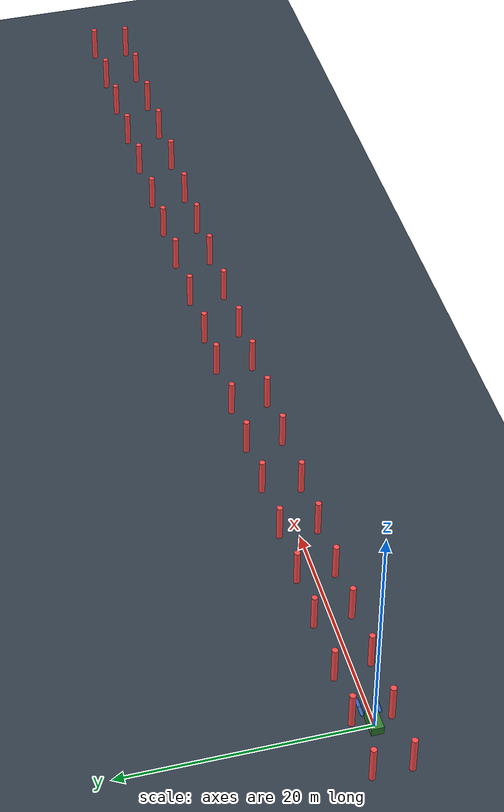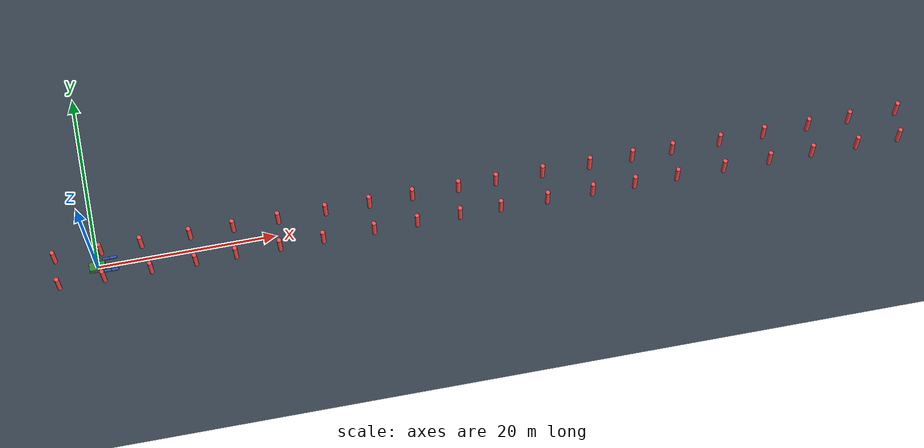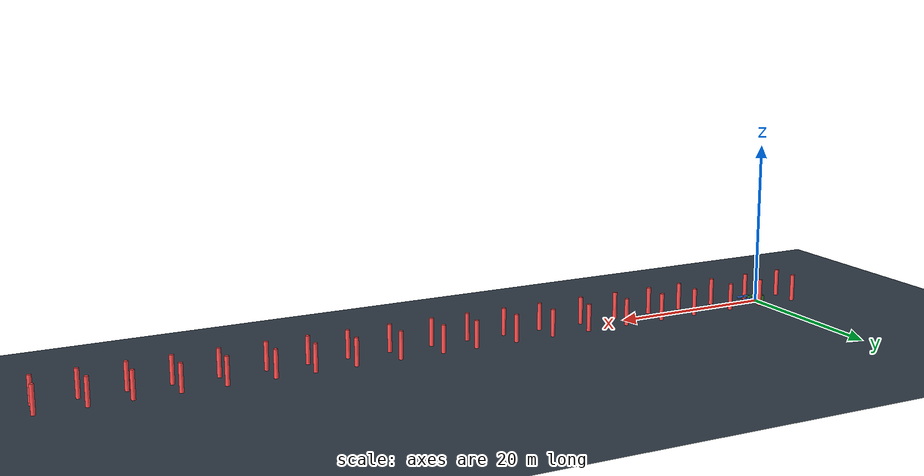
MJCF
<?xml version='1.0' encoding='utf-8'?>
<mujoco model="two_poles_solid_colors">

  <compiler angle="degree" coordinate="local" inertiafromgeom="true" autolimits="true" />
  <option timestep="0.01" integrator="RK4" gravity="0 0 -9.81" />

  <default>
    <geom friction="0 0 0" />
  </default>

  <worldbody>

    <light name="sun" pos="0 0 5" dir="0 0 -1" diffuse="1 1 1" specular="0.1 0.1 0.1" directional="true" cutoff="100" />

    <geom name="ground" type="plane" pos="0 0 0" size="100 100 0.5" rgba="0.2 0.25 0.3 1" />

    <body name="pole_0_0"><geom type="cylinder" pos="-4.46 -1.57 1.2" size="0.25 2" rgba="1 0.3 0.3 1" name="pole_0_0" /></body><body name="pole_0_1"><geom type="cylinder" pos="0.57 -1.57 1.2" size="0.25 2" rgba="1 0.3 0.3 1" name="pole_0_1" /></body><body name="pole_0_2"><geom type="cylinder" pos="5.84 -1.57 1.2" size="0.25 2" rgba="1 0.3 0.3 1" name="pole_0_2" /></body><body name="pole_0_3"><geom type="cylinder" pos="10.81 -1.57 1.2" size="0.25 2" rgba="1 0.3 0.3 1" name="pole_0_3" /></body><body name="pole_0_4"><geom type="cylinder" pos="15.31 -1.57 1.2" size="0.25 2" rgba="1 0.3 0.3 1" name="pole_0_4" /></body><body name="pole_0_5"><geom type="cylinder" pos="20.25 -1.57 1.2" size="0.25 2" rgba="1 0.3 0.3 1" name="pole_0_5" /></body><body name="pole_0_6"><geom type="cylinder" pos="25.12 -1.57 1.2" size="0.25 2" rgba="1 0.3 0.3 1" name="pole_0_6" /></body><body name="pole_0_7"><geom type="cylinder" pos="30.85 -1.57 1.2" size="0.25 2" rgba="1 0.3 0.3 1" name="pole_0_7" /></body><body name="pole_0_8"><geom type="cylinder" pos="35.69 -1.57 1.2" size="0.25 2" rgba="1 0.3 0.3 1" name="pole_0_8" /></body><body name="pole_0_9"><geom type="cylinder" pos="40.52 -1.57 1.2" size="0.25 2" rgba="1 0.3 0.3 1" name="pole_0_9" /></body><body name="pole_0_10"><geom type="cylinder" pos="45.12 -1.57 1.2" size="0.25 2" rgba="1 0.3 0.3 1" name="pole_0_10" /></body><body name="pole_0_11"><geom type="cylinder" pos="50.39 -1.57 1.2" size="0.25 2" rgba="1 0.3 0.3 1" name="pole_0_11" /></body><body name="pole_0_12"><geom type="cylinder" pos="55.52 -1.57 1.2" size="0.25 2" rgba="1 0.3 0.3 1" name="pole_0_12" /></body><body name="pole_0_13"><geom type="cylinder" pos="60.29 -1.57 1.2" size="0.25 2" rgba="1 0.3 0.3 1" name="pole_0_13" /></body><body name="pole_0_14"><geom type="cylinder" pos="65.12 -1.57 1.2" size="0.25 2" rgba="1 0.3 0.3 1" name="pole_0_14" /></body><body name="pole_0_15"><geom type="cylinder" pos="70.46 -1.57 1.2" size="0.25 2" rgba="1 0.3 0.3 1" name="pole_0_15" /></body><body name="pole_0_16"><geom type="cylinder" pos="75.64 -1.57 1.2" size="0.25 2" rgba="1 0.3 0.3 1" name="pole_0_16" /></body><body name="pole_0_17"><geom type="cylinder" pos="80.49 -1.57 1.2" size="0.25 2" rgba="1 0.3 0.3 1" name="pole_0_17" /></body><body name="pole_0_18"><geom type="cylinder" pos="85.61 -1.57 1.2" size="0.25 2" rgba="1 0.3 0.3 1" name="pole_0_18" /></body><body name="pole_0_19"><geom type="cylinder" pos="90.40 -1.57 1.2" size="0.25 2" rgba="1 0.3 0.3 1" name="pole_0_19" /></body><body name="pole_1_0"><geom type="cylinder" pos="-4.52 1.57 1.2" size="0.25 2" rgba="1 0.3 0.3 1" name="pole_1_0" /></body><body name="pole_1_1"><geom type="cylinder" pos="0.64 1.57 1.2" size="0.25 2" rgba="1 0.3 0.3 1" name="pole_1_1" /></body><body name="pole_1_2"><geom type="cylinder" pos="5.16 1.57 1.2" size="0.25 2" rgba="1 0.3 0.3 1" name="pole_1_2" /></body><body name="pole_1_3"><geom type="cylinder" pos="10.64 1.57 1.2" size="0.25 2" rgba="1 0.3 0.3 1" name="pole_1_3" /></body><body name="pole_1_4"><geom type="cylinder" pos="15.48 1.57 1.2" size="0.25 2" rgba="1 0.3 0.3 1" name="pole_1_4" /></body><body name="pole_1_5"><geom type="cylinder" pos="20.55 1.57 1.2" size="0.25 2" rgba="1 0.3 0.3 1" name="pole_1_5" /></body><body name="pole_1_6"><geom type="cylinder" pos="25.88 1.57 1.2" size="0.25 2" rgba="1 0.3 0.3 1" name="pole_1_6" /></body><body name="pole_1_7"><geom type="cylinder" pos="30.82 1.57 1.2" size="0.25 2" rgba="1 0.3 0.3 1" name="pole_1_7" /></body><body name="pole_1_8"><geom type="cylinder" pos="35.68 1.57 1.2" size="0.25 2" rgba="1 0.3 0.3 1" name="pole_1_8" /></body><body name="pole_1_9"><geom type="cylinder" pos="40.89 1.57 1.2" size="0.25 2" rgba="1 0.3 0.3 1" name="pole_1_9" /></body><body name="pole_1_10"><geom type="cylinder" pos="45.13 1.57 1.2" size="0.25 2" rgba="1 0.3 0.3 1" name="pole_1_10" /></body><body name="pole_1_11"><geom type="cylinder" pos="50.42 1.57 1.2" size="0.25 2" rgba="1 0.3 0.3 1" name="pole_1_11" /></body><body name="pole_1_12"><geom type="cylinder" pos="55.78 1.57 1.2" size="0.25 2" rgba="1 0.3 0.3 1" name="pole_1_12" /></body><body name="pole_1_13"><geom type="cylinder" pos="60.62 1.57 1.2" size="0.25 2" rgba="1 0.3 0.3 1" name="pole_1_13" /></body><body name="pole_1_14"><geom type="cylinder" pos="65.16 1.57 1.2" size="0.25 2" rgba="1 0.3 0.3 1" name="pole_1_14" /></body><body name="pole_1_15"><geom type="cylinder" pos="70.60 1.57 1.2" size="0.25 2" rgba="1 0.3 0.3 1" name="pole_1_15" /></body><body name="pole_1_16"><geom type="cylinder" pos="75.59 1.57 1.2" size="0.25 2" rgba="1 0.3 0.3 1" name="pole_1_16" /></body><body name="pole_1_17"><geom type="cylinder" pos="80.69 1.57 1.2" size="0.25 2" rgba="1 0.3 0.3 1" name="pole_1_17" /></body><body name="pole_1_18"><geom type="cylinder" pos="85.36 1.57 1.2" size="0.25 2" rgba="1 0.3 0.3 1" name="pole_1_18" /></body><body name="pole_1_19"><geom type="cylinder" pos="90.81 1.57 1.2" size="0.25 2" rgba="1 0.3 0.3 1" name="pole_1_19" /></body><body name="turtle" pos="0 0 0.36">
            <joint name="root_free" type="free" />

            <geom name="turtle_shell" type="box" size="0.9 0.5 0.36" density="30" rgba="0.2 0.5 0.2 1" />

            <body name="flipper_L_upper" pos="0.8 0.7 0.2">
                <joint name="shoulder_L" type="hinge" axis="0 0 1" range="0 170" />
                <geom name="flipper_L_upper_geom" type="capsule" fromto="0 0 0  0.6 0 0" size="0.15" rgba="0.2 0.4 0.7 1" />

                <body name="flipper_L_fore" pos="0.8 0 0">
                    <joint name="elbow_L" type="hinge" axis="0 0 1" range="0 80" />
                    <geom name="flipper_L_fore_geom" type="capsule" fromto="0 0 0  0.6 0 0" size="0.15" rgba="0.2 0.4 0.8 1" />
                </body>
            </body>

            <body name="flipper_R_upper" pos="0.8 -0.7 0.2">
                <joint name="shoulder_R" type="hinge" axis="0 0 -1" range="0 170" />
                <geom name="flipper_R_upper_geom" type="capsule" fromto="0 0 0  0.6 0 0" size="0.15" rgba="0.2 0.4 0.7 1" />

                <body name="flipper_R_fore" pos="0.8 0 0">
                    <joint name="elbow_R" type="hinge" axis="0 0 -1" range="0 80" />
                    <geom name="flipper_R_fore_geom" type="capsule" fromto="0 0 0  0.6 0 0" size="0.15" rgba="0.2 0.4 0.8 1" />
                </body>
            </body>

            <site name="shell_center" pos="0 0 0.08" size="0.01" />

            <camera name="topdown" mode="fixed" pos="0 0 20.0" xyaxes="0 -1 0   1 0 0" />
        </body>

        <camera name="follow" mode="trackcom" pos="0 -2 0.5" xyaxes="1 0 0 0 0 1" />
    </worldbody>
<compiler angle="degree" coordinate="local" />

    <option timestep="0.002" gravity="0 0 -9.81" iterations="50" integrator="RK4" />

    <default>
        <geom condim="3" contype="1" conaffinity="1" density="20" solref="0.005 1" solimp="0.9 0.95 0.001" friction="0.3 0.03 0.001" margin="0.005" rgba="0.3 0.6 0.3 1" />

        <joint armature="1e-5" damping="1" limited="true" />
    </default>

    <actuator>
        <motor name="motor_shoulder_L" joint="shoulder_L" gear="400" ctrlrange="-1 1" ctrllimited="true" />
        <motor name="motor_elbow_L" joint="elbow_L" gear="400" ctrlrange="-1 1" ctrllimited="true" />

        <motor name="motor_shoulder_R" joint="shoulder_R" gear="400" ctrlrange="-1 1" ctrllimited="true" />
        <motor name="motor_elbow_R" joint="elbow_R" gear="400" ctrlrange="-1 1" ctrllimited="true" />
    </actuator>

    <keyframe>
        <key name="tucked" qpos="1.0 0 0.365 0.0 0.0 0.0 0.0 2.8 0.2 2.8 0.2" />
    </keyframe>

    <sensor>
        <accelerometer site="shell_center" />
        <gyro site="shell_center" />
    </sensor>

</mujoco>
